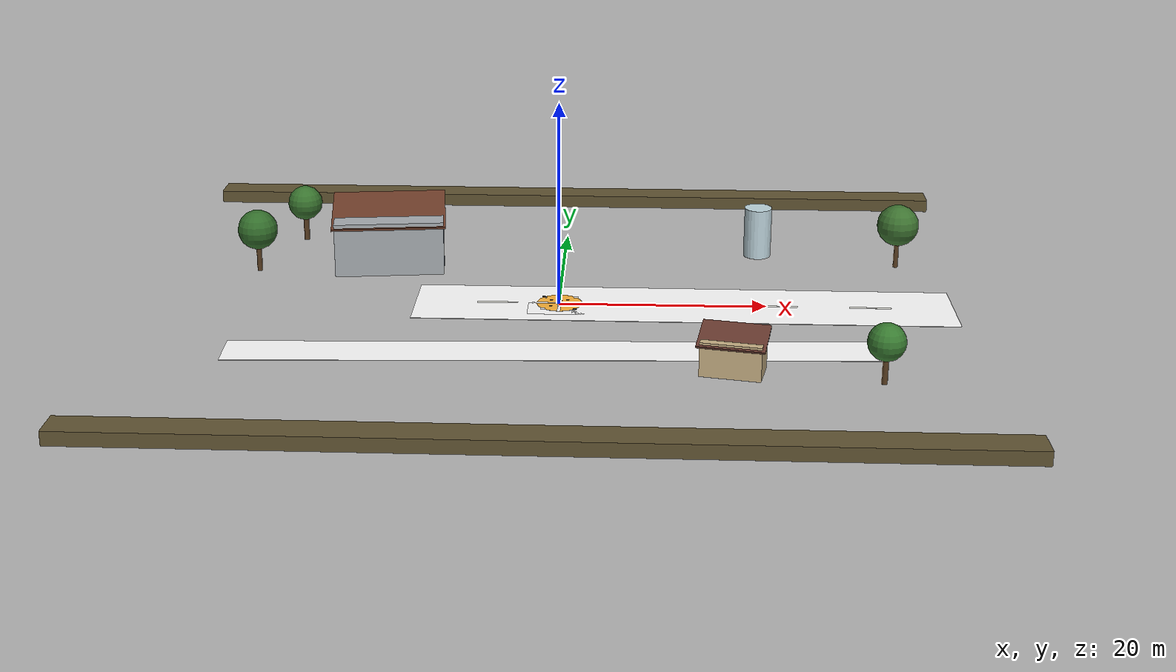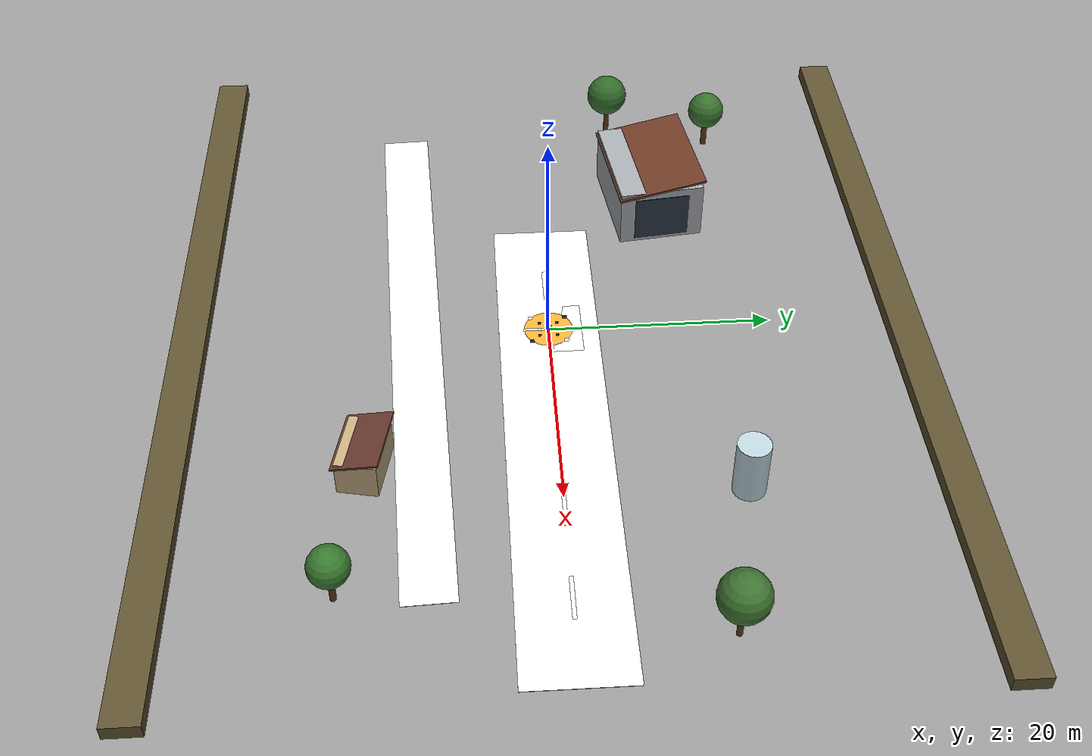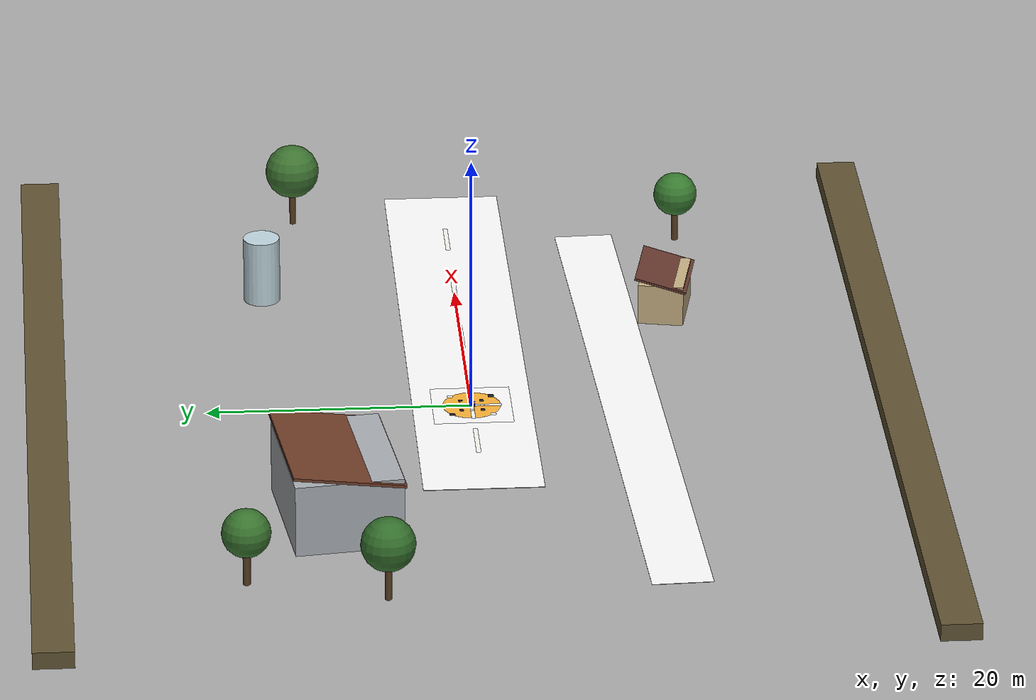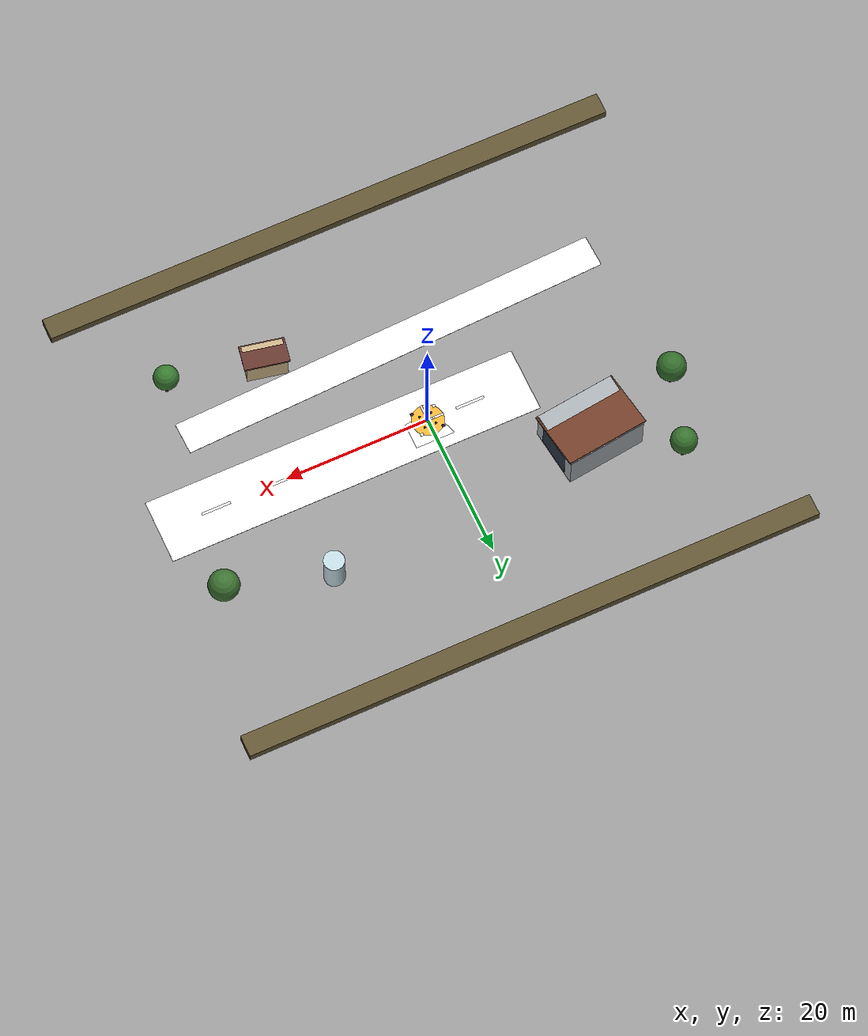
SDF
<sdf version="1.9">
 <world name="outdoor_world">
  <gravity>0 0 -9.81</gravity>
  <magnetic_field>6.0e-06 2.3e-05 -4.2e-05</magnetic_field>
  <atmosphere type="adiabatic"/>
  <physics name="physics" type="ode">
   <max_step_size>0.004</max_step_size>
   <real_time_factor>1.0</real_time_factor>
   <real_time_update_rate>250</real_time_update_rate>
  </physics>
  <plugin filename="gz-sim8-physics-system" name="gz::sim::systems::Physics"/>
  <plugin filename="gz-sim8-user-commands-system" name="gz::sim::systems::UserCommands"/>
  <plugin filename="gz-sim8-scene-broadcaster-system" name="gz::sim::systems::SceneBroadcaster"/>
  <plugin filename="gz-sim8-sensors-system" name="gz::sim::systems::Sensors">
   <render_engine>ogre2</render_engine>
  </plugin>
  <plugin filename="gz-sim8-imu-system" name="gz::sim::systems::Imu"/>
  <plugin filename="gz-sim8-air-pressure-system" name="gz::sim::systems::AirPressure"/>
  <scene>
   <ambient>0.74 0.78 0.82 1</ambient>
   <background>0.56 0.74 0.92 1</background>
   <shadows>true</shadows>
   <grid>false</grid>
  </scene>
  <light type="directional" name="sun">
   <pose>0 0 24 0 0 0</pose>
   <diffuse>1 0.97 0.92 1</diffuse>
   <specular>0.25 0.25 0.25 1</specular>
   <direction>-0.35 0.28 -1</direction>
  </light>
  <model name="runway">
   <static>true</static>
   <link name="link">
    <collision name="collision"><geometry><box><size>52 9 0.04</size></box></geometry></collision>
    <visual name="asphalt">
     <geometry><box><size>52 9 0.04</size></box></geometry>
     <material>
      <ambient>1 1 1 1</ambient>
      <diffuse>1 1 1 1</diffuse>
      <specular>0.04 0.04 0.04 1</specular>
      <pbr>
       <metal>
        <albedo_map>../models/materials/textures/runway_albedo.png</albedo_map>
        <metalness>0.0</metalness>
        <roughness>0.96</roughness>
       </metal>
      </pbr>
     </material>
    </visual>
    <visual name="center_line_1">
     <pose>-18 0 0.021 0 0 0</pose>
     <geometry><box><size>4 0.35 0.003</size></box></geometry>
     <material><ambient>0.95 0.95 0.92 1</ambient><diffuse>0.98 0.98 0.95 1</diffuse></material>
    </visual>
    <visual name="center_line_2">
     <pose>-9 0 0.021 0 0 0</pose>
     <geometry><box><size>4 0.35 0.003</size></box></geometry>
     <material><ambient>0.95 0.95 0.92 1</ambient><diffuse>0.98 0.98 0.95 1</diffuse></material>
    </visual>
    <visual name="center_line_3">
     <pose>0 0 0.021 0 0 0</pose>
     <geometry><box><size>4 0.35 0.003</size></box></geometry>
     <material><ambient>0.95 0.95 0.92 1</ambient><diffuse>0.98 0.98 0.95 1</diffuse></material>
    </visual>
    <visual name="center_line_4">
     <pose>9 0 0.021 0 0 0</pose>
     <geometry><box><size>4 0.35 0.003</size></box></geometry>
     <material><ambient>0.95 0.95 0.92 1</ambient><diffuse>0.98 0.98 0.95 1</diffuse></material>
    </visual>
    <visual name="center_line_5">
     <pose>18 0 0.021 0 0 0</pose>
     <geometry><box><size>4 0.35 0.003</size></box></geometry>
     <material><ambient>0.95 0.95 0.92 1</ambient><diffuse>0.98 0.98 0.95 1</diffuse></material>
    </visual>
   </link>
   <pose>12 0 0.02 0 0 0</pose>
  </model>
  <model name="flight_pad">
   <static>true</static>
   <link name="link">
    <collision name="collision"><geometry><box><size>6 6 0.04</size></box></geometry></collision>
    <visual name="concrete">
     <geometry><box><size>6 6 0.04</size></box></geometry>
     <material>
      <ambient>1 1 1 1</ambient>
      <diffuse>1 1 1 1</diffuse>
      <specular>0.04 0.04 0.04 1</specular>
      <pbr>
       <metal>
        <albedo_map>../models/materials/textures/flight_pad_albedo.png</albedo_map>
        <metalness>0.0</metalness>
        <roughness>0.92</roughness>
       </metal>
      </pbr>
     </material>
    </visual>
    <visual name="ring">
     <pose>0 0 0.021 0 0 0</pose>
     <geometry><cylinder><radius>2.2</radius><length>0.003</length></cylinder></geometry>
     <material><ambient>0.95 0.63 0.18 1</ambient><diffuse>0.98 0.7 0.22 1</diffuse></material>
    </visual>
    <visual name="inner_mark">
     <pose>0 0 0.022 0 0 0</pose>
     <geometry><box><size>0.55 0.55 0.003</size></box></geometry>
     <material><ambient>0.08 0.08 0.08 1</ambient><diffuse>0.11 0.11 0.11 1</diffuse></material>
    </visual>
    <visual name="flow_marker_nw">
     <pose>-0.8 0.8 0.023 0 0 0</pose>
     <geometry><box><size>0.28 0.28 0.003</size></box></geometry>
     <material><ambient>0.08 0.08 0.08 1</ambient><diffuse>0.11 0.11 0.11 1</diffuse></material>
    </visual>
    <visual name="flow_marker_n">
     <pose>0 0.8 0.023 0 0 0</pose>
     <geometry><box><size>0.28 0.28 0.003</size></box></geometry>
     <material><ambient>0.93 0.93 0.93 1</ambient><diffuse>0.98 0.98 0.98 1</diffuse></material>
    </visual>
    <visual name="flow_marker_ne">
     <pose>0.8 0.8 0.023 0 0 0</pose>
     <geometry><box><size>0.28 0.28 0.003</size></box></geometry>
     <material><ambient>0.08 0.08 0.08 1</ambient><diffuse>0.11 0.11 0.11 1</diffuse></material>
    </visual>
    <visual name="flow_marker_w">
     <pose>-0.8 0 0.023 0 0 0</pose>
     <geometry><box><size>0.28 0.28 0.003</size></box></geometry>
     <material><ambient>0.93 0.93 0.93 1</ambient><diffuse>0.98 0.98 0.98 1</diffuse></material>
    </visual>
    <visual name="flow_marker_e">
     <pose>0.8 0 0.023 0 0 0</pose>
     <geometry><box><size>0.28 0.28 0.003</size></box></geometry>
     <material><ambient>0.93 0.93 0.93 1</ambient><diffuse>0.98 0.98 0.98 1</diffuse></material>
    </visual>
    <visual name="flow_marker_sw">
     <pose>-0.8 -0.8 0.023 0 0 0</pose>
     <geometry><box><size>0.28 0.28 0.003</size></box></geometry>
     <material><ambient>0.08 0.08 0.08 1</ambient><diffuse>0.11 0.11 0.11 1</diffuse></material>
    </visual>
    <visual name="flow_marker_s">
     <pose>0 -0.8 0.023 0 0 0</pose>
     <geometry><box><size>0.28 0.28 0.003</size></box></geometry>
     <material><ambient>0.93 0.93 0.93 1</ambient><diffuse>0.98 0.98 0.98 1</diffuse></material>
    </visual>
    <visual name="flow_marker_se">
     <pose>0.8 -0.8 0.023 0 0 0</pose>
     <geometry><box><size>0.28 0.28 0.003</size></box></geometry>
     <material><ambient>0.08 0.08 0.08 1</ambient><diffuse>0.11 0.11 0.11 1</diffuse></material>
    </visual>
    <visual name="cross_ns">
     <pose>0 0 0.022 0 0 0</pose>
     <geometry><box><size>0.3 4.5 0.003</size></box></geometry>
     <material><ambient>0.93 0.93 0.93 1</ambient><diffuse>0.98 0.98 0.98 1</diffuse></material>
    </visual>
    <visual name="cross_ew">
     <pose>0 0 0.022 0 0 0</pose>
     <geometry><box><size>4.5 0.3 0.003</size></box></geometry>
     <material><ambient>0.93 0.93 0.93 1</ambient><diffuse>0.98 0.98 0.98 1</diffuse></material>
    </visual>
    <visual name="pad_marker_nw">
     <pose>-1.5 1.55 0.023 0 0 0</pose>
     <geometry><box><size>0.4 0.4 0.003</size></box></geometry>
     <material><ambient>0.08 0.08 0.08 1</ambient><diffuse>0.11 0.11 0.11 1</diffuse></material>
    </visual>
    <visual name="pad_marker_ne">
     <pose>1.55 1.55 0.023 0 0 0</pose>
     <geometry><box><size>0.4 0.4 0.003</size></box></geometry>
     <material><ambient>0.93 0.93 0.93 1</ambient><diffuse>0.98 0.98 0.98 1</diffuse></material>
    </visual>
    <visual name="pad_marker_sw">
     <pose>-1.55 -1.55 0.023 0 0 0</pose>
     <geometry><box><size>0.4 0.4 0.003</size></box></geometry>
     <material><ambient>0.93 0.93 0.93 1</ambient><diffuse>0.98 0.98 0.98 1</diffuse></material>
    </visual>
    <visual name="pad_marker_se">
     <pose>1.55 -1.55 0.023 0 0 0</pose>
     <geometry><box><size>0.4 0.4 0.003</size></box></geometry>
     <material><ambient>0.08 0.08 0.08 1</ambient><diffuse>0.11 0.11 0.11 1</diffuse></material>
    </visual>
   </link>
   <pose>0 0 0.02 0 0 0</pose>
  </model>
  <model name="service_road">
   <static>true</static>
   <link name="link">
    <collision name="collision"><geometry><box><size>60 4.5 0.03</size></box></geometry></collision>
    <visual name="visual">
     <geometry><box><size>60 4.5 0.03</size></box></geometry>
     <material>
      <ambient>1 1 1 1</ambient>
      <diffuse>1 1 1 1</diffuse>
      <specular>0.05 0.05 0.05 1</specular>
      <pbr>
       <metal>
        <albedo_map>../models/materials/textures/service_road_albedo.png</albedo_map>
        <metalness>0.0</metalness>
        <roughness>0.95</roughness>
       </metal>
      </pbr>
     </material>
    </visual>
   </link>
   <pose>0 -12 0.015 0 0 0.04</pose>
  </model>
  <model name="hangar">
   <static>true</static>
   <link name="link">
    <collision name="collision"><geometry><box><size>11 8 5.5</size></box></geometry></collision>
    <visual name="shell">
     <geometry><box><size>11 8 5.5</size></box></geometry>
     <material><ambient>0.54 0.56 0.58 1</ambient><diffuse>0.66 0.68 0.7 1</diffuse></material>
    </visual>
    <visual name="door">
     <pose>5.51 0 -0.2 0 0 0</pose>
     <geometry><box><size>0.08 5.2 4.4</size></box></geometry>
     <material><ambient>0.15 0.18 0.22 1</ambient><diffuse>0.18 0.22 0.28 1</diffuse></material>
    </visual>
    <visual name="roof_cap">
     <pose>0 0 2.9 0.16 0 0</pose>
     <geometry><box><size>11.5 8.4 0.22</size></box></geometry>
     <material><ambient>0.34 0.18 0.12 1</ambient><diffuse>0.44 0.24 0.16 1</diffuse></material>
    </visual>
   </link>
   <pose>-18 11 2.75 0 0 0.12</pose>
  </model>
  <model name="operations_shed">
   <static>true</static>
   <link name="link">
    <collision name="collision"><geometry><box><size>5.5 3.5 3.2</size></box></geometry></collision>
    <visual name="shell">
     <geometry><box><size>5.5 3.5 3.2</size></box></geometry>
     <material><ambient>0.69 0.61 0.45 1</ambient><diffuse>0.78 0.69 0.52 1</diffuse></material>
    </visual>
    <visual name="roof">
     <pose>0 0 1.75 0.25 0 0</pose>
     <geometry><box><size>6.1 4.1 0.18</size></box></geometry>
     <material><ambient>0.32 0.16 0.12 1</ambient><diffuse>0.4 0.22 0.18 1</diffuse></material>
    </visual>
   </link>
   <pose>16 -16 1.6 0 0 -0.2</pose>
  </model>
  <model name="water_tank">
   <static>true</static>
   <link name="link">
    <collision name="collision">
     <geometry><cylinder><radius>1.4</radius><length>5.2</length></cylinder></geometry>
    </collision>
    <visual name="visual">
     <geometry><cylinder><radius>1.4</radius><length>5.2</length></cylinder></geometry>
     <material><ambient>0.68 0.76 0.79 1</ambient><diffuse>0.75 0.84 0.87 1</diffuse></material>
    </visual>
   </link>
   <pose>20 15 2.6 0 0 0</pose>
  </model>
  <model name="tree_cluster_west_1">
   <static>true</static>
   <link name="link">
    <visual name="trunk">
     <pose>0 0 1.25 0 0 0</pose>
     <geometry><cylinder><radius>0.28</radius><length>2.5</length></cylinder></geometry>
     <material><ambient>0.28 0.19 0.1 1</ambient><diffuse>0.35 0.24 0.13 1</diffuse></material>
    </visual>
    <visual name="canopy">
     <pose>0 0 4.1 0 0 0</pose>
     <geometry><sphere><radius>1.8</radius></sphere></geometry>
     <material><ambient>0.16 0.35 0.14 1</ambient><diffuse>0.22 0.45 0.18 1</diffuse></material>
    </visual>
   </link>
   <pose>-28 18 0 0 0 0</pose>
  </model>
  <model name="tree_cluster_west_2">
   <static>true</static>
   <link name="link">
    <visual name="trunk">
     <pose>0 0 1.35 0 0 0</pose>
     <geometry><cylinder><radius>0.25</radius><length>2.7</length></cylinder></geometry>
     <material><ambient>0.28 0.19 0.1 1</ambient><diffuse>0.35 0.24 0.13 1</diffuse></material>
    </visual>
    <visual name="canopy">
     <pose>0 0 4.4 0 0 0</pose>
     <geometry><sphere><radius>2.0</radius></sphere></geometry>
     <material><ambient>0.15 0.33 0.13 1</ambient><diffuse>0.2 0.43 0.17 1</diffuse></material>
    </visual>
   </link>
   <pose>-31 8 0 0 0 0</pose>
  </model>
  <model name="tree_cluster_east_1">
   <static>true</static>
   <link name="link">
    <visual name="trunk">
     <pose>0 0 1.2 0 0 0</pose>
     <geometry><cylinder><radius>0.26</radius><length>2.4</length></cylinder></geometry>
     <material><ambient>0.28 0.19 0.1 1</ambient><diffuse>0.35 0.24 0.13 1</diffuse></material>
    </visual>
    <visual name="canopy">
     <pose>0 0 3.9 0 0 0</pose>
     <geometry><sphere><radius>1.7</radius></sphere></geometry>
     <material><ambient>0.16 0.36 0.15 1</ambient><diffuse>0.22 0.48 0.19 1</diffuse></material>
    </visual>
   </link>
   <pose>29 -18 0 0 0 0</pose>
  </model>
  <model name="tree_cluster_east_2">
   <static>true</static>
   <link name="link">
    <visual name="trunk">
     <pose>0 0 1.45 0 0 0</pose>
     <geometry><cylinder><radius>0.24</radius><length>2.9</length></cylinder></geometry>
     <material><ambient>0.28 0.19 0.1 1</ambient><diffuse>0.35 0.24 0.13 1</diffuse></material>
    </visual>
    <visual name="canopy">
     <pose>0 0 4.5 0 0 0</pose>
     <geometry><sphere><radius>2.1</radius></sphere></geometry>
     <material><ambient>0.17 0.34 0.14 1</ambient><diffuse>0.24 0.45 0.19 1</diffuse></material>
    </visual>
   </link>
   <pose>34 12 0 0 0 0</pose>
  </model>
  <model name="perimeter_berm_north">
   <static>true</static>
   <link name="link">
    <collision name="collision"><geometry><box><size>80 3 1.3</size></box></geometry></collision>
    <visual name="visual">
     <geometry><box><size>80 3 1.3</size></box></geometry>
     <material><ambient>0.3 0.26 0.16 1</ambient><diffuse>0.38 0.33 0.2 1</diffuse></material>
    </visual>
   </link>
   <pose>0 32 0.65 0 0 0</pose>
  </model>
  <model name="perimeter_berm_south">
   <static>true</static>
   <link name="link">
    <collision name="collision"><geometry><box><size>80 3 1.3</size></box></geometry></collision>
    <visual name="visual">
     <geometry><box><size>80 3 1.3</size></box></geometry>
     <material><ambient>0.3 0.26 0.16 1</ambient><diffuse>0.38 0.33 0.2 1</diffuse></material>
    </visual>
   </link>
   <pose>0 -32 0.65 0 0 0</pose>
  </model>
  <include><uri>model://quadcopter</uri><name>quadcopter</name><pose>0 0 0.18 0 0 0</pose></include>
 </world>
</sdf>

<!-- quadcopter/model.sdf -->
<sdf version="1.9">
  <model name="quadcopter">
    <static>false</static>
    <pose>0 0 0.18 0 0 0</pose>

    <link name="base_link">
      <pose>0 0 0 0 0 0</pose>
      <inertial>
        <mass>1.0</mass>
        <inertia>
          <ixx>0.021</ixx>
          <iyy>0.021</iyy>
          <izz>0.038</izz>
          <ixy>0.0</ixy>
          <ixz>0.0</ixz>
          <iyz>0.0</iyz>
        </inertia>
      </inertial>

      <collision name="body_collision">
        <geometry>
          <box>
            <size>0.18 0.18 0.06</size>
          </box>
        </geometry>
      </collision>

      <visual name="body_visual">
        <geometry>
          <box>
            <size>0.18 0.18 0.06</size>
          </box>
        </geometry>
        <material>
          <ambient>0.15 0.15 0.18 1</ambient>
          <diffuse>0.18 0.18 0.22 1</diffuse>
          <specular>0.05 0.05 0.05 1</specular>
        </material>
      </visual>

      <visual name="arm_front_left">
        <pose>0.09 0.09 0 0 0 0.785398</pose>
        <geometry>
          <box>
            <size>0.26 0.03 0.02</size>
          </box>
        </geometry>
        <material>
          <ambient>0.7 0.15 0.15 1</ambient>
          <diffuse>0.8 0.2 0.2 1</diffuse>
        </material>
      </visual>

      <visual name="arm_front_right">
        <pose>0.09 -0.09 0 0 0 -0.785398</pose>
        <geometry>
          <box>
            <size>0.26 0.03 0.02</size>
          </box>
        </geometry>
        <material>
          <ambient>0.15 0.15 0.7 1</ambient>
          <diffuse>0.2 0.2 0.85 1</diffuse>
        </material>
      </visual>

      <visual name="camera_mount_visual">
        <pose>0.085 0 -0.01 0 0 0</pose>
        <geometry>
          <box>
            <size>0.05 0.04 0.01</size>
          </box>
        </geometry>
        <material>
          <ambient>0.08 0.08 0.08 1</ambient>
          <diffuse>0.12 0.12 0.12 1</diffuse>
        </material>
      </visual>

      <visual name="camera_body_visual">
        <pose>0.12 0 -0.015 0 0 0</pose>
        <geometry>
          <box>
            <size>0.04 0.03 0.025</size>
          </box>
        </geometry>
        <material>
          <ambient>0.04 0.04 0.04 1</ambient>
          <diffuse>0.08 0.08 0.08 1</diffuse>
        </material>
      </visual>

      <visual name="down_camera_mount_visual">
        <pose>0 0 -0.026 0 0 0</pose>
        <geometry>
          <box>
            <size>0.045 0.045 0.01</size>
          </box>
        </geometry>
        <material>
          <ambient>0.05 0.05 0.05 1</ambient>
          <diffuse>0.09 0.09 0.09 1</diffuse>
        </material>
      </visual>

      <sensor name="imu_sensor" type="imu">
        <always_on>true</always_on>
        <update_rate>250</update_rate>
        <visualize>false</visualize>
        <imu>
          <enable_orientation>false</enable_orientation>
          <angular_velocity>
            <x>
              <noise type="gaussian">
                <mean>0.0</mean>
                <stddev>0.003</stddev>
              </noise>
            </x>
            <y>
              <noise type="gaussian">
                <mean>0.0</mean>
                <stddev>0.003</stddev>
              </noise>
            </y>
            <z>
              <noise type="gaussian">
                <mean>0.0</mean>
                <stddev>0.003</stddev>
              </noise>
            </z>
          </angular_velocity>
          <linear_acceleration>
            <x>
              <noise type="gaussian">
                <mean>0.0</mean>
                <stddev>0.05</stddev>
              </noise>
            </x>
            <y>
              <noise type="gaussian">
                <mean>0.0</mean>
                <stddev>0.05</stddev>
              </noise>
            </y>
            <z>
              <noise type="gaussian">
                <mean>0.0</mean>
                <stddev>0.05</stddev>
              </noise>
            </z>
          </linear_acceleration>
        </imu>
      </sensor>

      <sensor name="barometer" type="air_pressure">
        <always_on>true</always_on>
        <update_rate>30</update_rate>
        <visualize>false</visualize>
        <air_pressure>
          <reference_altitude>0.0</reference_altitude>
          <pressure>
            <noise type="gaussian">
              <mean>0.0</mean>
              <stddev>1.5</stddev>
            </noise>
          </pressure>
        </air_pressure>
      </sensor>

      <sensor name="front_camera" type="camera">
        <pose>0.12 0 -0.015 0 0.15 0</pose>
        <always_on>true</always_on>
        <update_rate>30</update_rate>
        <visualize>false</visualize>
        <camera name="front_camera">
          <horizontal_fov>1.3962634</horizontal_fov>
          <lens>
            <intrinsics>
              <fx>381.36112213134766</fx>
              <fy>381.361141204834</fy>
              <cx>320.0</cx>
              <cy>240.0</cy>
              <s>0.0</s>
            </intrinsics>
          </lens>
          <distortion>
            <k1>0.0</k1>
            <k2>0.0</k2>
            <k3>0.0</k3>
            <p1>0.0</p1>
            <p2>0.0</p2>
            <center>0.5 0.5</center>
          </distortion>
          <image>
            <width>640</width>
            <height>480</height>
            <format>R8G8B8</format>
          </image>
          <clip>
            <near>0.08</near>
            <far>50.0</far>
          </clip>
          <noise>
            <type>gaussian</type>
            <mean>0.0</mean>
            <stddev>0.006</stddev>
          </noise>
        </camera>
      </sensor>

      <sensor name="down_camera" type="camera">
        <pose>0 0 -0.09 0 1.57079632679 0</pose>
        <always_on>true</always_on>
        <update_rate>45</update_rate>
        <visualize>false</visualize>
        <camera name="down_camera">
          <horizontal_fov>1.22173048</horizontal_fov>
          <lens>
            <intrinsics>
              <fx>415.69219381653056</fx>
              <fy>415.69219381653056</fy>
              <cx>320.0</cx>
              <cy>240.0</cy>
              <s>0.0</s>
            </intrinsics>
          </lens>
          <distortion>
            <k1>0.0</k1>
            <k2>0.0</k2>
            <k3>0.0</k3>
            <p1>0.0</p1>
            <p2>0.0</p2>
            <center>0.5 0.5</center>
          </distortion>
          <image>
            <width>640</width>
            <height>480</height>
            <format>R8G8B8</format>
          </image>
          <clip>
            <near>0.05</near>
            <far>25.0</far>
          </clip>
          <noise>
            <type>gaussian</type>
            <mean>0.0</mean>
            <stddev>0.004</stddev>
          </noise>
        </camera>
      </sensor>
    </link>

    <link name="rotor_front_left">
      <pose>0.18 0.18 0.04 0 0 0</pose>
      <inertial>
        <mass>0.02</mass>
        <inertia>
          <ixx>0.00002</ixx>
          <iyy>0.00002</iyy>
          <izz>0.00004</izz>
          <ixy>0.0</ixy>
          <ixz>0.0</ixz>
          <iyz>0.0</iyz>
        </inertia>
      </inertial>
      <collision name="collision">
        <geometry>
          <cylinder>
            <radius>0.09</radius>
            <length>0.01</length>
          </cylinder>
        </geometry>
      </collision>
      <visual name="visual">
        <geometry>
          <cylinder>
            <radius>0.09</radius>
            <length>0.01</length>
          </cylinder>
        </geometry>
        <material>
          <ambient>0.85 0.25 0.25 1</ambient>
          <diffuse>0.95 0.3 0.3 1</diffuse>
        </material>
      </visual>
    </link>

    <joint name="rotor_front_left_joint" type="revolute">
      <parent>base_link</parent>
      <child>rotor_front_left</child>
      <axis>
        <xyz>0 0 1</xyz>
        <limit>
          <lower>-1e16</lower>
          <upper>1e16</upper>
        </limit>
      </axis>
    </joint>

    <link name="rotor_front_right">
      <pose>0.18 -0.18 0.04 0 0 0</pose>
      <inertial>
        <mass>0.02</mass>
        <inertia>
          <ixx>0.00002</ixx>
          <iyy>0.00002</iyy>
          <izz>0.00004</izz>
          <ixy>0.0</ixy>
          <ixz>0.0</ixz>
          <iyz>0.0</iyz>
        </inertia>
      </inertial>
      <collision name="collision">
        <geometry>
          <cylinder>
            <radius>0.09</radius>
            <length>0.01</length>
          </cylinder>
        </geometry>
      </collision>
      <visual name="visual">
        <geometry>
          <cylinder>
            <radius>0.09</radius>
            <length>0.01</length>
          </cylinder>
        </geometry>
        <material>
          <ambient>0.2 0.2 0.85 1</ambient>
          <diffuse>0.25 0.25 0.95 1</diffuse>
        </material>
      </visual>
    </link>

    <joint name="rotor_front_right_joint" type="revolute">
      <parent>base_link</parent>
      <child>rotor_front_right</child>
      <axis>
        <xyz>0 0 1</xyz>
        <limit>
          <lower>-1e16</lower>
          <upper>1e16</upper>
        </limit>
      </axis>
    </joint>

    <link name="rotor_rear_right">
      <pose>-0.18 -0.18 0.04 0 0 0</pose>
      <inertial>
        <mass>0.02</mass>
        <inertia>
          <ixx>0.00002</ixx>
          <iyy>0.00002</iyy>
          <izz>0.00004</izz>
          <ixy>0.0</ixy>
          <ixz>0.0</ixz>
          <iyz>0.0</iyz>
        </inertia>
      </inertial>
      <collision name="collision">
        <geometry>
          <cylinder>
            <radius>0.09</radius>
            <length>0.01</length>
          </cylinder>
        </geometry>
      </collision>
      <visual name="visual">
        <geometry>
          <cylinder>
            <radius>0.09</radius>
            <length>0.01</length>
          </cylinder>
        </geometry>
        <material>
          <ambient>0.2 0.2 0.85 1</ambient>
          <diffuse>0.25 0.25 0.95 1</diffuse>
        </material>
      </visual>
    </link>

    <joint name="rotor_rear_right_joint" type="revolute">
      <parent>base_link</parent>
      <child>rotor_rear_right</child>
      <axis>
        <xyz>0 0 1</xyz>
        <limit>
          <lower>-1e16</lower>
          <upper>1e16</upper>
        </limit>
      </axis>
    </joint>

    <link name="rotor_rear_left">
      <pose>-0.18 0.18 0.04 0 0 0</pose>
      <inertial>
        <mass>0.02</mass>
        <inertia>
          <ixx>0.00002</ixx>
          <iyy>0.00002</iyy>
          <izz>0.00004</izz>
          <ixy>0.0</ixy>
          <ixz>0.0</ixz>
          <iyz>0.0</iyz>
        </inertia>
      </inertial>
      <collision name="collision">
        <geometry>
          <cylinder>
            <radius>0.09</radius>
            <length>0.01</length>
          </cylinder>
        </geometry>
      </collision>
      <visual name="visual">
        <geometry>
          <cylinder>
            <radius>0.09</radius>
            <length>0.01</length>
          </cylinder>
        </geometry>
        <material>
          <ambient>0.85 0.25 0.25 1</ambient>
          <diffuse>0.95 0.3 0.3 1</diffuse>
        </material>
      </visual>
    </link>

    <joint name="rotor_rear_left_joint" type="revolute">
      <parent>base_link</parent>
      <child>rotor_rear_left</child>
      <axis>
        <xyz>0 0 1</xyz>
        <limit>
          <lower>-1e16</lower>
          <upper>1e16</upper>
        </limit>
      </axis>
    </joint>

    <plugin filename="gz-sim8-multicopter-motor-model-system" name="gz::sim::systems::MulticopterMotorModel">
      <robotNamespace>quadcopter</robotNamespace>
      <jointName>rotor_front_left_joint</jointName>
      <linkName>rotor_front_left</linkName>
      <turningDirection>ccw</turningDirection>
      <timeConstantUp>0.0125</timeConstantUp>
      <timeConstantDown>0.025</timeConstantDown>
      <maxRotVelocity>900.0</maxRotVelocity>
      <motorConstant>8.54858e-06</motorConstant>
      <momentConstant>0.016</momentConstant>
      <commandSubTopic>command/motor_speed</commandSubTopic>
      <actuator_number>0</actuator_number>
      <motorNumber>0</motorNumber>
      <rotorDragCoefficient>8.06428e-04</rotorDragCoefficient>
      <rollingMomentCoefficient>1.0e-06</rollingMomentCoefficient>
      <rotorVelocitySlowdownSim>10.0</rotorVelocitySlowdownSim>
      <motorType>velocity</motorType>
    </plugin>

    <plugin filename="gz-sim8-multicopter-motor-model-system" name="gz::sim::systems::MulticopterMotorModel">
      <robotNamespace>quadcopter</robotNamespace>
      <jointName>rotor_front_right_joint</jointName>
      <linkName>rotor_front_right</linkName>
      <turningDirection>cw</turningDirection>
      <timeConstantUp>0.0125</timeConstantUp>
      <timeConstantDown>0.025</timeConstantDown>
      <maxRotVelocity>900.0</maxRotVelocity>
      <motorConstant>8.54858e-06</motorConstant>
      <momentConstant>0.016</momentConstant>
      <commandSubTopic>command/motor_speed</commandSubTopic>
      <actuator_number>1</actuator_number>
      <motorNumber>1</motorNumber>
      <rotorDragCoefficient>8.06428e-04</rotorDragCoefficient>
      <rollingMomentCoefficient>1.0e-06</rollingMomentCoefficient>
      <rotorVelocitySlowdownSim>10.0</rotorVelocitySlowdownSim>
      <motorType>velocity</motorType>
    </plugin>

    <plugin filename="gz-sim8-multicopter-motor-model-system" name="gz::sim::systems::MulticopterMotorModel">
      <robotNamespace>quadcopter</robotNamespace>
      <jointName>rotor_rear_right_joint</jointName>
      <linkName>rotor_rear_right</linkName>
      <turningDirection>ccw</turningDirection>
      <timeConstantUp>0.0125</timeConstantUp>
      <timeConstantDown>0.025</timeConstantDown>
      <maxRotVelocity>900.0</maxRotVelocity>
      <motorConstant>8.54858e-06</motorConstant>
      <momentConstant>0.016</momentConstant>
      <commandSubTopic>command/motor_speed</commandSubTopic>
      <actuator_number>2</actuator_number>
      <motorNumber>2</motorNumber>
      <rotorDragCoefficient>8.06428e-04</rotorDragCoefficient>
      <rollingMomentCoefficient>1.0e-06</rollingMomentCoefficient>
      <rotorVelocitySlowdownSim>10.0</rotorVelocitySlowdownSim>
      <motorType>velocity</motorType>
    </plugin>

    <plugin filename="gz-sim8-multicopter-motor-model-system" name="gz::sim::systems::MulticopterMotorModel">
      <robotNamespace>quadcopter</robotNamespace>
      <jointName>rotor_rear_left_joint</jointName>
      <linkName>rotor_rear_left</linkName>
      <turningDirection>cw</turningDirection>
      <timeConstantUp>0.0125</timeConstantUp>
      <timeConstantDown>0.025</timeConstantDown>
      <maxRotVelocity>900.0</maxRotVelocity>
      <motorConstant>8.54858e-06</motorConstant>
      <momentConstant>0.016</momentConstant>
      <commandSubTopic>command/motor_speed</commandSubTopic>
      <actuator_number>3</actuator_number>
      <motorNumber>3</motorNumber>
      <rotorDragCoefficient>8.06428e-04</rotorDragCoefficient>
      <rollingMomentCoefficient>1.0e-06</rollingMomentCoefficient>
      <rotorVelocitySlowdownSim>10.0</rotorVelocitySlowdownSim>
      <motorType>velocity</motorType>
    </plugin>
  </model>
</sdf>
